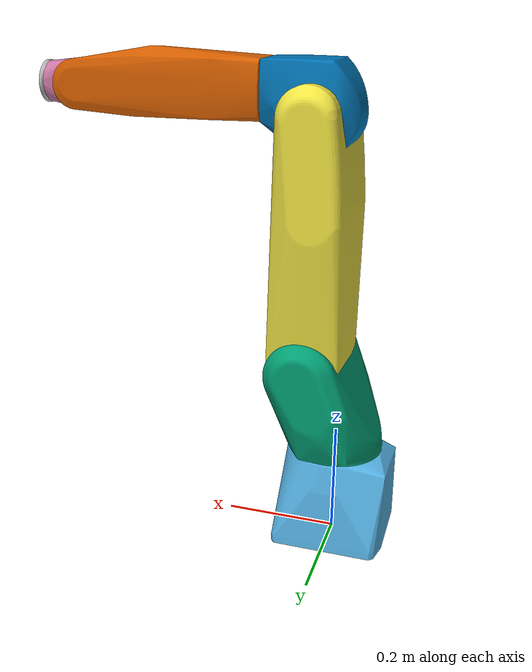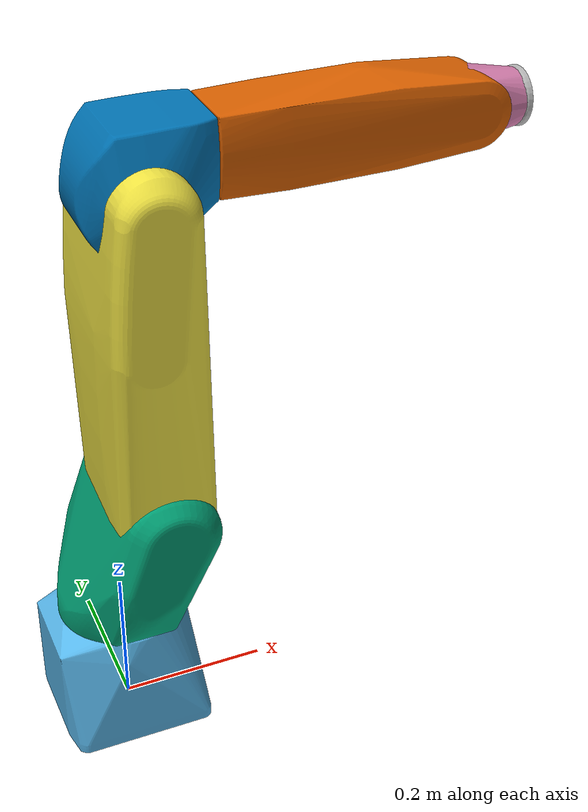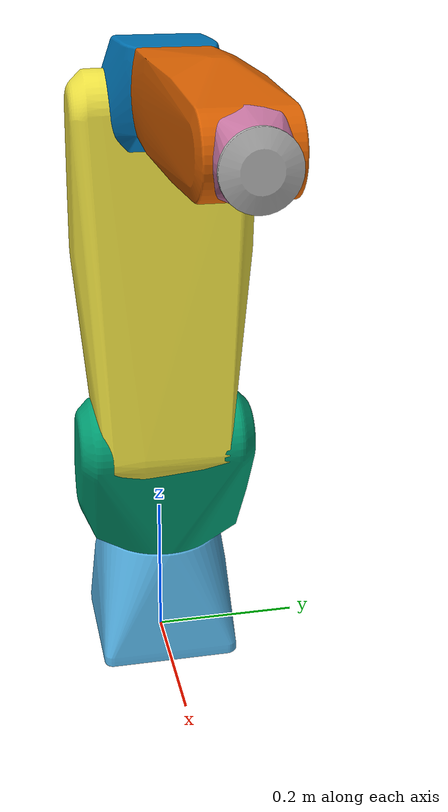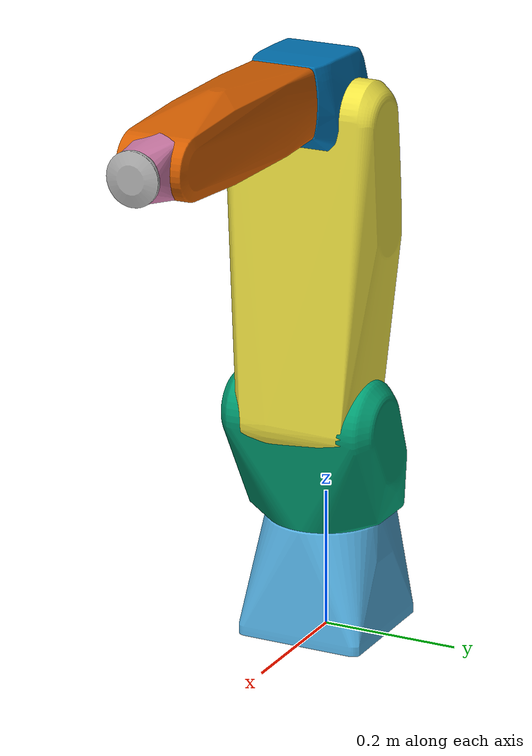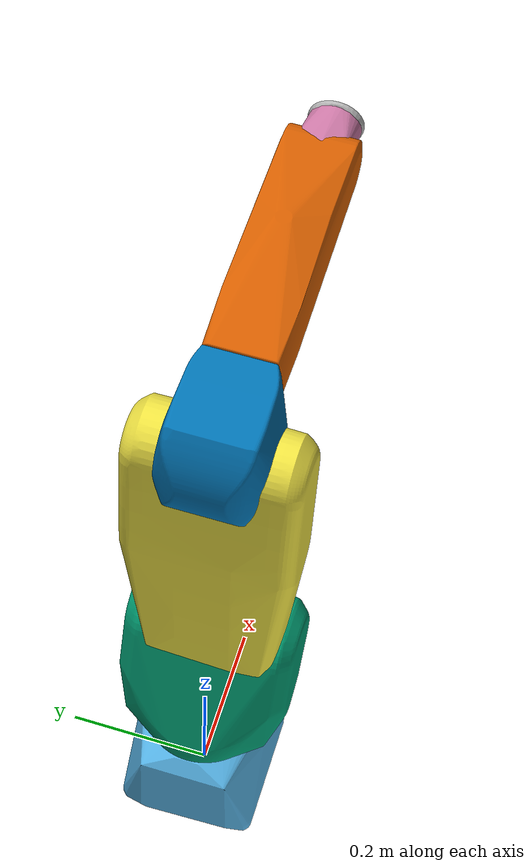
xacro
<?xml version="1.0"?>
<robot xmlns:xacro="http://www.ros.org/wiki/xacro" name="cr_7ia_l">
  <xacro:arg name="prefix" default=""/>
  <xacro:include filename="$(find fanuc_robot_descriptions)/urdf/cr_7ia_l_macro.xacro"/>
  <link name="world"/>
  <xacro:cr_7ia_l prefix="$(arg prefix)" parent="world">
    <origin xyz="0 0 0" rpy="0 0 0"/>
  </xacro:cr_7ia_l>
</robot>

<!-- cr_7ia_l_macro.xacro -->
<robot xmlns:xacro="http://www.ros.org/wiki/xacro">

  <!-- Fanuc CR-7iA/L - generated from RoboDK .robot -->
  <xacro:macro name="cr_7ia_l" params="prefix parent *origin">

    <material name="${prefix}cr_7ia_l_grey"><color rgba="0.85 0.85 0.85 1.0"/></material>

    <joint name="${prefix}base_joint" type="fixed">
      <xacro:insert_block name="origin"/>
      <parent link="${parent}"/>
      <child link="${prefix}base_link"/>
    </joint>

    <link name="${prefix}base_link">
      <visual>
        <origin xyz="0 0 0" rpy="0 0 0"/>
        <geometry>
          <mesh filename="package://fanuc_robot_descriptions/meshes/cr_7ia_l/visual/base_link.dae" scale="0.001 0.001 0.001"/>
        </geometry>
      </visual>
      <collision>
        <origin xyz="0 0 0" rpy="0 0 0"/>
        <geometry>
          <mesh filename="package://fanuc_robot_descriptions/meshes/cr_7ia_l/collision/base_link.stl" scale="0.001 0.001 0.001"/>
        </geometry>
      </collision>
    </link>

    <link name="${prefix}link_1">
      <visual>
        <origin xyz="0 0 0" rpy="0 0 0"/>
        <geometry>
          <mesh filename="package://fanuc_robot_descriptions/meshes/cr_7ia_l/visual/link_1.dae" scale="0.001 0.001 0.001"/>
        </geometry>
      </visual>
      <collision>
        <origin xyz="0 0 0" rpy="0 0 0"/>
        <geometry>
          <mesh filename="package://fanuc_robot_descriptions/meshes/cr_7ia_l/collision/link_1.stl" scale="0.001 0.001 0.001"/>
        </geometry>
      </collision>
    </link>

    <link name="${prefix}link_2">
      <visual>
        <origin xyz="0 0 0" rpy="0 0 0"/>
        <geometry>
          <mesh filename="package://fanuc_robot_descriptions/meshes/cr_7ia_l/visual/link_2.dae" scale="0.001 0.001 0.001"/>
        </geometry>
      </visual>
      <collision>
        <origin xyz="0 0 0" rpy="0 0 0"/>
        <geometry>
          <mesh filename="package://fanuc_robot_descriptions/meshes/cr_7ia_l/collision/link_2.stl" scale="0.001 0.001 0.001"/>
        </geometry>
      </collision>
    </link>

    <link name="${prefix}link_3">
      <visual>
        <origin xyz="0 0 0" rpy="0 0 0"/>
        <geometry>
          <mesh filename="package://fanuc_robot_descriptions/meshes/cr_7ia_l/visual/link_3.dae" scale="0.001 0.001 0.001"/>
        </geometry>
      </visual>
      <collision>
        <origin xyz="0 0 0" rpy="0 0 0"/>
        <geometry>
          <mesh filename="package://fanuc_robot_descriptions/meshes/cr_7ia_l/collision/link_3.stl" scale="0.001 0.001 0.001"/>
        </geometry>
      </collision>
    </link>

    <link name="${prefix}link_4">
      <visual>
        <origin xyz="0 0 0" rpy="0 0 0"/>
        <geometry>
          <mesh filename="package://fanuc_robot_descriptions/meshes/cr_7ia_l/visual/link_4.dae" scale="0.001 0.001 0.001"/>
        </geometry>
      </visual>
      <collision>
        <origin xyz="0 0 0" rpy="0 0 0"/>
        <geometry>
          <mesh filename="package://fanuc_robot_descriptions/meshes/cr_7ia_l/collision/link_4.stl" scale="0.001 0.001 0.001"/>
        </geometry>
      </collision>
    </link>

    <link name="${prefix}link_5">
      <visual>
        <origin xyz="0 0 0" rpy="0 0 0"/>
        <geometry>
          <mesh filename="package://fanuc_robot_descriptions/meshes/cr_7ia_l/visual/link_5.dae" scale="0.001 0.001 0.001"/>
        </geometry>
      </visual>
      <collision>
        <origin xyz="0 0 0" rpy="0 0 0"/>
        <geometry>
          <mesh filename="package://fanuc_robot_descriptions/meshes/cr_7ia_l/collision/link_5.stl" scale="0.001 0.001 0.001"/>
        </geometry>
      </collision>
    </link>

    <link name="${prefix}link_6">
      <visual>
        <origin xyz="0 0 0" rpy="0 0 0"/>
        <geometry>
          <mesh filename="package://fanuc_robot_descriptions/meshes/cr_7ia_l/visual/link_6.dae" scale="0.001 0.001 0.001"/>
        </geometry>
      </visual>
      <collision>
        <origin xyz="0 0 0" rpy="0 0 0"/>
        <geometry>
          <mesh filename="package://fanuc_robot_descriptions/meshes/cr_7ia_l/collision/link_6.stl" scale="0.001 0.001 0.001"/>
        </geometry>
      </collision>
    </link>

    <joint name="${prefix}joint_1" type="revolute">
      <parent link="${prefix}base_link"/>
      <child link="${prefix}link_1"/>
      <origin xyz="0 0 0.33" rpy="0 -0 0"/>
      <axis xyz="0 0 1"/>
      <limit lower="-2.9670597" upper="2.9670597" effort="100.0" velocity="3.1416"/>
    </joint>

    <joint name="${prefix}joint_2" type="revolute">
      <parent link="${prefix}link_1"/>
      <child link="${prefix}link_2"/>
      <origin xyz="0.05 0 0" rpy="-1.5707963 -1.5707963 0"/>
      <axis xyz="0 0 1"/>
      <limit lower="-1.7453293" upper="2.5307274" effort="100.0" velocity="3.1416"/>
    </joint>

    <joint name="${prefix}joint_3" type="revolute">
      <parent link="${prefix}link_2"/>
      <child link="${prefix}link_3"/>
      <origin xyz="0.44 0 0" rpy="0 -0 0"/>
      <axis xyz="0 0 1"/>
      <limit lower="-1.1693706" upper="3.7175513" effort="100.0" velocity="3.1416"/>
    </joint>

    <joint name="${prefix}joint_4" type="revolute">
      <parent link="${prefix}link_3"/>
      <child link="${prefix}link_4"/>
      <origin xyz="0.035 0.42 2.5717583e-17" rpy="-1.5707963 -0 0"/>
      <axis xyz="0 0 1"/>
      <limit lower="-3.3161256" upper="3.3161256" effort="100.0" velocity="3.1416"/>
    </joint>

    <joint name="${prefix}joint_5" type="revolute">
      <parent link="${prefix}link_4"/>
      <child link="${prefix}link_5"/>
      <origin xyz="0 0 0" rpy="1.5707963 -0 0"/>
      <axis xyz="0 0 1"/>
      <limit lower="-2.0071286" upper="2.0071286" effort="100.0" velocity="3.1416"/>
    </joint>

    <joint name="${prefix}joint_6" type="revolute">
      <parent link="${prefix}link_5"/>
      <child link="${prefix}link_6"/>
      <origin xyz="0 0.08 4.8985872e-18" rpy="-1.5707963 -0 0"/>
      <axis xyz="0 0 1"/>
      <limit lower="-6.2831853" upper="6.2831853" effort="100.0" velocity="3.1416"/>
    </joint>

    <link name="${prefix}flange"/>
    <joint name="${prefix}link_6-flange" type="fixed">
      <parent link="${prefix}link_6"/>
      <child link="${prefix}flange"/>
      <origin xyz="0 0 0" rpy="0 0 0"/>
    </joint>
    <link name="${prefix}tool0"/>
    <joint name="${prefix}flange-tool0" type="fixed">
      <parent link="${prefix}flange"/>
      <child link="${prefix}tool0"/>
      <origin xyz="0 0 0" rpy="0 0 0"/>
    </joint>

  </xacro:macro>
</robot>
